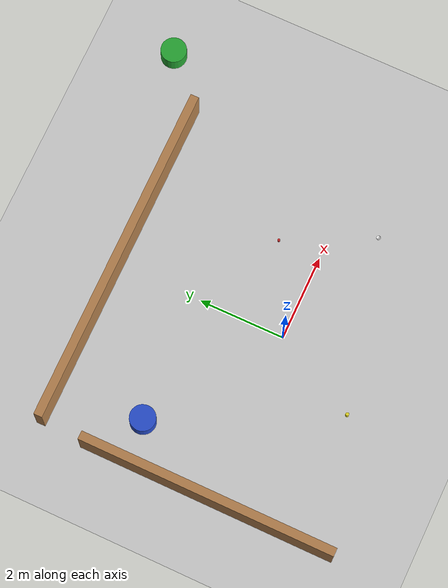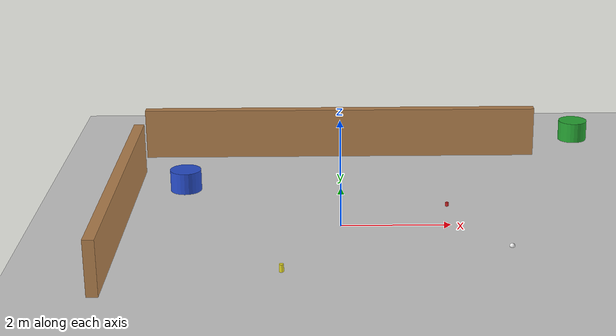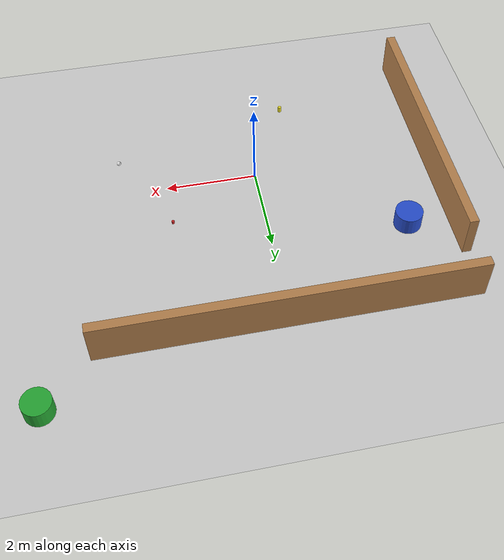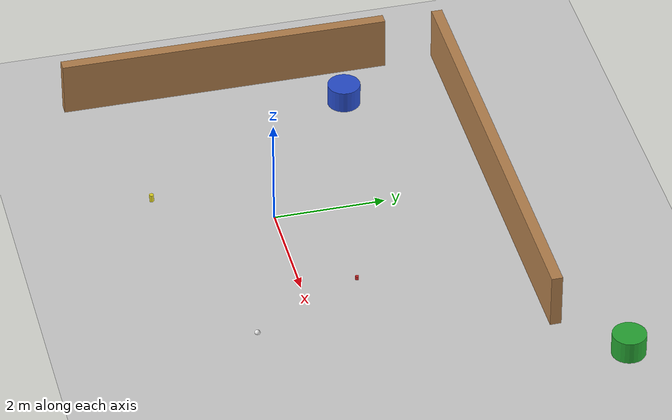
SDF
<?xml version="1.0"?>
<sdf version="1.6">
  <world name="trash_world">
    <!-- 物理设置 -->
    <physics name="default_physics" default="0" type="ode">
      <gravity>0 0 -9.8066</gravity>
      <ode>
        <solver>
          <type>quick</type>
          <iters>10</iters>
          <sor>1.3</sor>
        </solver>
        <constraints>
          <cfm>0.0</cfm>
          <erp>0.2</erp>
          <contact_max_correcting_vel>100.0</contact_max_correcting_vel>
          <contact_surface_layer>0.001</contact_surface_layer>
        </constraints>
      </ode>
      <max_step_size>0.004</max_step_size>
      <real_time_factor>1</real_time_factor>
      <real_time_update_rate>250</real_time_update_rate>
    </physics>

    <!-- 光照 -->
    <light name="sun" type="directional">
      <cast_shadows>1</cast_shadows>
      <pose>0 0 10 0 0 0</pose>
      <diffuse>0.8 0.8 0.8 1</diffuse>
      <specular>0.2 0.2 0.2 1</specular>
      <attenuation>
        <range>1000</range>
        <constant>0.9</constant>
        <linear>0.01</linear>
        <quadratic>0.001</quadratic>
      </attenuation>
      <direction>-0.5 0.1 -0.9</direction>
    </light>

    <!-- 地面 -->
    <model name="ground_plane">
      <static>true</static>
      <link name="link">
        <collision name="collision">
          <geometry>
            <plane>
              <normal>0 0 1</normal>
              <size>100 100</size>
            </plane>
          </geometry>
          <surface>
            <contact>
              <collide_bitmask>65535</collide_bitmask>
              <ode>
                <mu>100</mu>
                <mu2>50</mu2>
              </ode>
            </contact>
            <friction>
              <ode>
                <mu>100</mu>
                <mu2>50</mu2>
              </ode>
            </friction>
          </surface>
        </collision>
        <visual name="visual">
          <cast_shadows>false</cast_shadows>
          <geometry>
            <plane>
              <normal>0 0 1</normal>
              <size>100 100</size>
            </plane>
          </geometry>
          <material>
            <script>
              <uri>file://media/materials/scripts/gazebo.material</uri>
              <name>Gazebo/Grey</name>
            </script>
          </material>
        </visual>
      </link>
    </model>

    <!-- 垃圾桶1 -->
    <model name="trash_bin_1">
      <pose>5 5 0 0 0 0</pose>
      <static>true</static>
      <link name="link">
        <collision name="collision">
          <geometry>
            <cylinder>
              <radius>0.3</radius>
              <length>0.8</length>
            </cylinder>
          </geometry>
        </collision>
        <visual name="visual">
          <geometry>
            <cylinder>
              <radius>0.3</radius>
              <length>0.8</length>
            </cylinder>
          </geometry>
          <material>
            <script>
              <uri>file://media/materials/scripts/gazebo.material</uri>
              <name>Gazebo/Green</name>
            </script>
          </material>
        </visual>
      </link>
    </model>

    <!-- 垃圾桶2 -->
    <model name="trash_bin_2">
      <pose>-3 2 0 0 0 0</pose>
      <static>true</static>
      <link name="link">
        <collision name="collision">
          <geometry>
            <cylinder>
              <radius>0.3</radius>
              <length>0.8</length>
            </cylinder>
          </geometry>
        </collision>
        <visual name="visual">
          <geometry>
            <cylinder>
              <radius>0.3</radius>
              <length>0.8</length>
            </cylinder>
          </geometry>
          <material>
            <script>
              <uri>file://media/materials/scripts/gazebo.material</uri>
              <name>Gazebo/Blue</name>
            </script>
          </material>
        </visual>
      </link>
    </model>

    <!-- 垃圾1 (易拉罐) -->
    <model name="trash_can_1">
      <pose>2 1 0 0 0 0</pose>
      <link name="link">
        <collision name="collision">
          <geometry>
            <cylinder>
              <radius>0.03</radius>
              <length>0.12</length>
            </cylinder>
          </geometry>
        </collision>
        <visual name="visual">
          <geometry>
            <cylinder>
              <radius>0.03</radius>
              <length>0.12</length>
            </cylinder>
          </geometry>
          <material>
            <script>
              <uri>file://media/materials/scripts/gazebo.material</uri>
              <name>Gazebo/Red</name>
            </script>
          </material>
        </visual>
        <inertial>
          <mass>0.1</mass>
          <inertia>
            <ixx>0.0001</ixx>
            <ixy>0</ixy>
            <ixz>0</ixz>
            <iyy>0.0001</iyy>
            <iyz>0</iyz>
            <izz>0.0001</izz>
          </inertia>
        </inertial>
      </link>
    </model>

    <!-- 垃圾2 (塑料瓶) -->
    <model name="trash_bottle_1">
      <pose>-1 -2 0 0 0 0</pose>
      <link name="link">
        <collision name="collision">
          <geometry>
            <cylinder>
              <radius>0.04</radius>
              <length>0.25</length>
            </cylinder>
          </geometry>
        </collision>
        <visual name="visual">
          <geometry>
            <cylinder>
              <radius>0.04</radius>
              <length>0.25</length>
            </cylinder>
          </geometry>
          <material>
            <script>
              <uri>file://media/materials/scripts/gazebo.material</uri>
              <name>Gazebo/Yellow</name>
            </script>
          </material>
        </visual>
        <inertial>
          <mass>0.05</mass>
          <inertia>
            <ixx>0.0001</ixx>
            <ixy>0</ixy>
            <ixz>0</ixz>
            <iyy>0.0001</iyy>
            <iyz>0</iyz>
            <izz>0.0001</izz>
          </inertia>
        </inertial>
      </link>
    </model>

    <!-- 垃圾3 (纸团) -->
    <model name="trash_paper_1">
      <pose>3 -1 0 0 0 0</pose>
      <link name="link">
        <collision name="collision">
          <geometry>
            <sphere>
              <radius>0.05</radius>
            </sphere>
          </geometry>
        </collision>
        <visual name="visual">
          <geometry>
            <sphere>
              <radius>0.05</radius>
            </sphere>
          </geometry>
          <material>
            <script>
              <uri>file://media/materials/scripts/gazebo.material</uri>
              <name>Gazebo/White</name>
            </script>
          </material>
        </visual>
        <inertial>
          <mass>0.02</mass>
          <inertia>
            <ixx>0.0001</ixx>
            <ixy>0</ixy>
            <ixz>0</ixz>
            <iyy>0.0001</iyy>
            <iyz>0</iyz>
            <izz>0.0001</izz>
          </inertia>
        </inertial>
      </link>
    </model>

    <!-- 墙壁障碍物 -->
    <model name="wall_1">
      <pose>0 4 0.5 0 0 0</pose>
      <static>true</static>
      <link name="link">
        <collision name="collision">
          <geometry>
            <box>
              <size>8 0.2 1</size>
            </box>
          </geometry>
        </collision>
        <visual name="visual">
          <geometry>
            <box>
              <size>8 0.2 1</size>
            </box>
          </geometry>
          <material>
            <script>
              <uri>file://media/materials/scripts/gazebo.material</uri>
              <name>Gazebo/Wood</name>
            </script>
          </material>
        </visual>
      </link>
    </model>

    <!-- 墙壁障碍物2 -->
    <model name="wall_2">
      <pose>-4 0 0.5 0 0 1.57</pose>
      <static>true</static>
      <link name="link">
        <collision name="collision">
          <geometry>
            <box>
              <size>6 0.2 1</size>
            </box>
          </geometry>
        </collision>
        <visual name="visual">
          <geometry>
            <box>
              <size>6 0.2 1</size>
            </box>
          </geometry>
          <material>
            <script>
              <uri>file://media/materials/scripts/gazebo.material</uri>
              <name>Gazebo/Wood</name>
            </script>
          </material>
        </visual>
      </link>
    </model>

  </world>
</sdf>
